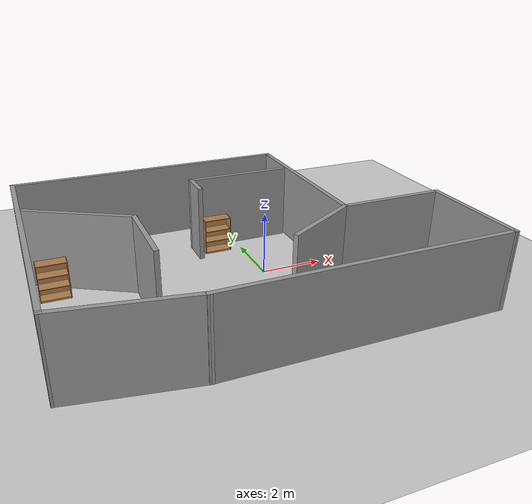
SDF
<sdf version="1.6">
 <world name="default">
  <light name="sun" type="directional">
   <pose>0 0 10 0 -0 0</pose>
   <diffuse>0.8 0.8 0.8 1</diffuse>
   <specular>0.2 0.2 0.2 1</specular>
   <attenuation>
    <range>1000</range>
    <constant>0.9</constant>
    <linear>0.01</linear>
    <quadratic>0.001</quadratic>
   </attenuation>
   <direction>-0.5 0.1 -0.9</direction>
  </light>
  <model name="ground_plane">
   <static>1</static>
   <link name="link">
    <collision name="collision">
     <geometry><plane><normal>0 0 1</normal><size>100 100</size></plane></geometry>
     <surface><friction><ode><mu>100</mu><mu2>50</mu2></ode></friction></surface>
    </collision>
    <visual name="visual">
     <cast_shadows>0</cast_shadows>
     <geometry><plane><normal>0 0 1</normal><size>100 100</size></plane></geometry>
     <material>
      <script><uri>file://media/materials/scripts/gazebo.material</uri><name>Gazebo/Grey</name></script>
     </material>
    </visual>
   </link>
  </model>
  <gravity>0 0 -9.8</gravity>
  <magnetic_field>6e-06 2.3e-05 -4.2e-05</magnetic_field>
  <atmosphere type="adiabatic"/>
  <physics name="default_physics" default="0" type="ode">
   <max_step_size>0.001</max_step_size>
   <real_time_factor>1</real_time_factor>
   <real_time_update_rate>1000</real_time_update_rate>
  </physics>
  <scene><ambient>0.4 0.4 0.4 1</ambient><background>0.7 0.7 0.7 1</background><shadows>1</shadows></scene>
  <audio><device>default</device></audio>
  <spherical_coordinates>
   <surface_model>EARTH_WGS84</surface_model>
   <latitude_deg>0</latitude_deg>
   <longitude_deg>0</longitude_deg>
   <elevation>0</elevation>
   <heading_deg>0</heading_deg>
  </spherical_coordinates>
  <model name="smart_test">
   <pose>-0.860655 -0.210655 0 0 -0 0</pose>
   <link name="Wall_0">
    <collision name="Wall_0_Collision">
     <geometry><box><size>9 0.15 2.5</size></box></geometry>
     <pose>0 0 1.25 0 -0 0</pose>
    </collision>
    <visual name="Wall_0_Visual">
     <pose>0 0 1.25 0 -0 0</pose>
     <geometry><box><size>9 0.15 2.5</size></box></geometry>
     <material>
      <script><uri>file://media/materials/scripts/gazebo.material</uri><name>Gazebo/Grey</name></script>
      <ambient>1 1 1 1</ambient>
     </material>
     <meta><layer>0</layer></meta>
    </visual>
    <pose>1.80566 -4.46934 0 0 -0 0</pose>
   </link>
   <link name="Wall_1">
    <collision name="Wall_1_Collision">
     <geometry><box><size>3.5 0.15 2.5</size></box></geometry>
     <pose>0 0 1.25 0 -0 0</pose>
    </collision>
    <visual name="Wall_1_Visual">
     <pose>0 0 1.25 0 -0 0</pose>
     <geometry><box><size>3.5 0.15 2.5</size></box></geometry>
     <material>
      <script><uri>file://media/materials/scripts/gazebo.material</uri><name>Gazebo/Grey</name></script>
      <ambient>1 1 1 1</ambient>
     </material>
     <meta><layer>0</layer></meta>
    </visual>
    <pose>6.23065 -2.79434 0 0 -0 1.5708</pose>
   </link>
   <link name="Wall_11">
    <collision name="Wall_11_Collision">
     <geometry><box><size>3.5 0.15 2.5</size></box></geometry>
     <pose>0 0 1.25 0 -0 0</pose>
    </collision>
    <visual name="Wall_11_Visual">
     <pose>0 0 1.25 0 -0 0</pose>
     <geometry><box><size>3.5 0.15 2.5</size></box></geometry>
     <material>
      <script><uri>file://media/materials/scripts/gazebo.material</uri><name>Gazebo/Grey</name></script>
      <ambient>1 1 1 1</ambient>
     </material>
     <meta><layer>0</layer></meta>
    </visual>
    <pose>-4.59611 1.31726 0 0 -0 -0.523599</pose>
   </link>
   <link name="Wall_12">
    <collision name="Wall_12_Collision">
     <geometry><box><size>2.5 0.15 2.5</size></box></geometry>
     <pose>0 0 1.25 0 -0 0</pose>
    </collision>
    <visual name="Wall_12_Visual">
     <pose>0 0 1.25 0 -0 0</pose>
     <geometry><box><size>2.5 0.15 2.5</size></box></geometry>
     <material>
      <script><uri>file://media/materials/scripts/gazebo.material</uri><name>Gazebo/Grey</name></script>
      <ambient>1 1 1 1</ambient>
     </material>
     <meta><layer>0</layer></meta>
    </visual>
    <pose>-3.14552 -0.695239 0 0 -0 -1.5708</pose>
   </link>
   <link name="Wall_14">
    <collision name="Wall_14_Collision">
     <geometry><box><size>2.75 0.15 2.5</size></box></geometry>
     <pose>0 0 1.25 0 -0 0</pose>
    </collision>
    <visual name="Wall_14_Visual">
     <pose>0 0 1.25 0 -0 0</pose>
     <geometry><box><size>2.75 0.15 2.5</size></box></geometry>
     <material>
      <script><uri>file://media/materials/scripts/gazebo.material</uri><name>Gazebo/Grey</name></script>
      <ambient>1 1 1 1</ambient>
     </material>
     <meta><layer>0</layer></meta>
    </visual>
    <pose>1.75482 -1.76934 0 0 -0 -2.61799</pose>
   </link>
   <link name="Wall_2">
    <collision name="Wall_2_Collision">
     <geometry><box><size>3.5 0.15 2.5</size></box></geometry>
     <pose>0 0 1.25 0 -0 0</pose>
    </collision>
    <visual name="Wall_2_Visual">
     <pose>0 0 1.25 0 -0 0</pose>
     <geometry><box><size>3.5 0.15 2.5</size></box></geometry>
     <material>
      <script><uri>file://media/materials/scripts/gazebo.material</uri><name>Gazebo/Grey</name></script>
      <ambient>1 1 1 1</ambient>
     </material>
     <meta><layer>0</layer></meta>
    </visual>
    <pose>4.55565 -1.11935 0 0 -0 3.14159</pose>
   </link>
   <link name="Wall_3">
    <collision name="Wall_3_Collision">
     <geometry><box><size>5.75 0.15 2.5</size></box></geometry>
     <pose>0 0 1.25 0 -0 0</pose>
    </collision>
    <visual name="Wall_3_Visual">
     <pose>0 0 1.25 0 -0 0</pose>
     <geometry><box><size>5.75 0.15 2.5</size></box></geometry>
     <material>
      <script><uri>file://media/materials/scripts/gazebo.material</uri><name>Gazebo/Grey</name></script>
      <ambient>1 1 1 1</ambient>
     </material>
     <meta><layer>0</layer></meta>
    </visual>
    <pose>2.88065 1.68066 0 0 -0 1.5708</pose>
   </link>
   <link name="Wall_4">
    <collision name="Wall_4_Collision">
     <geometry><box><size>9.25 0.15 2.5</size></box></geometry>
     <pose>0 0 1.25 0 -0 0</pose>
    </collision>
    <visual name="Wall_4_Visual">
     <pose>0 0 1.25 0 -0 0</pose>
     <geometry><box><size>9.25 0.15 2.5</size></box></geometry>
     <material>
      <script><uri>file://media/materials/scripts/gazebo.material</uri><name>Gazebo/Grey</name></script>
      <ambient>1 1 1 1</ambient>
     </material>
     <meta><layer>0</layer></meta>
    </visual>
    <pose>-1.66935 4.48065 0 0 -0 3.14159</pose>
   </link>
   <link name="Wall_5">
    <collision name="Wall_5_Collision">
     <geometry><box><size>8.5 0.15 2.5</size></box></geometry>
     <pose>0 0 1.25 0 -0 0</pose>
    </collision>
    <visual name="Wall_5_Visual">
     <pose>0 0 1.25 0 -0 0</pose>
     <geometry><box><size>8.5 0.15 2.5</size></box></geometry>
     <material>
      <script><uri>file://media/materials/scripts/gazebo.material</uri><name>Gazebo/Grey</name></script>
      <ambient>1 1 1 1</ambient>
     </material>
     <meta><layer>0</layer></meta>
    </visual>
    <pose>-6.21934 0.305655 0 0 -0 -1.5708</pose>
   </link>
   <link name="Wall_6">
    <collision name="Wall_6_Collision">
     <geometry><box><size>3.79966 0.15 2.5</size></box></geometry>
     <pose>0 0 1.25 0 -0 0</pose>
    </collision>
    <visual name="Wall_6_Visual">
     <pose>0 0 1.25 0 -0 0</pose>
     <geometry><box><size>3.79966 0.15 2.5</size></box></geometry>
     <material>
      <script><uri>file://media/materials/scripts/gazebo.material</uri><name>Gazebo/Grey</name></script>
      <ambient>1 1 1 1</ambient>
     </material>
     <meta><layer>0</layer></meta>
    </visual>
    <pose>-4.41934 -4.16934 0 0 -0 -0.165149</pose>
   </link>
   <link name="Wall_8">
    <collision name="Wall_8_Collision">
     <geometry><box><size>3.5 0.15 2.5</size></box></geometry>
     <pose>0 0 1.25 0 -0 0</pose>
    </collision>
    <visual name="Wall_8_Visual">
     <pose>0 0 1.25 0 -0 0</pose>
     <geometry><box><size>3.5 0.15 2.5</size></box></geometry>
     <material>
      <script><uri>file://media/materials/scripts/gazebo.material</uri><name>Gazebo/Grey</name></script>
      <ambient>1 1 1 1</ambient>
     </material>
     <meta><layer>0</layer></meta>
    </visual>
    <pose>1.00263 2.78798 0 0 -0 3.14159</pose>
   </link>
   <link name="Wall_9">
    <collision name="Wall_9_Collision">
     <geometry><box><size>1 0.15 2.5</size></box></geometry>
     <pose>0 0 1.25 0 -0 0</pose>
    </collision>
    <visual name="Wall_9_Visual">
     <pose>0 0 1.25 0 -0 0</pose>
     <geometry><box><size>1 0.15 2.5</size></box></geometry>
     <material>
      <script><uri>file://media/materials/scripts/gazebo.material</uri><name>Gazebo/Grey</name></script>
      <ambient>1 1 1 1</ambient>
     </material>
     <meta><layer>0</layer></meta>
    </visual>
    <pose>-0.672367 2.36298 0 0 -0 -1.5708</pose>
   </link>
   <static>1</static>
  </model>
  <model name="bookshelf">
   <static>1</static>
   <link name="link">
    <inertial><mass>1</mass></inertial>
    <collision name="back">
     <pose>0 0.005 0.6 0 -0 0</pose>
     <geometry><box><size>0.9 0.01 1.2</size></box></geometry>
    </collision>
    <visual name="visual1">
     <pose>0 0.005 0.6 0 -0 0</pose>
     <geometry><box><size>0.9 0.01 1.2</size></box></geometry>
     <material>
      <script><uri>file://media/materials/scripts/gazebo.material</uri><name>Gazebo/Wood</name></script>
     </material>
    </visual>
    <collision name="left_side">
     <pose>0.45 -0.195 0.6 0 -0 0</pose>
     <geometry><box><size>0.02 0.4 1.2</size></box></geometry>
    </collision>
    <visual name="visual2">
     <pose>0.45 -0.195 0.6 0 -0 0</pose>
     <geometry><box><size>0.02 0.4 1.2</size></box></geometry>
     <material>
      <script><uri>file://media/materials/scripts/gazebo.material</uri><name>Gazebo/Wood</name></script>
     </material>
    </visual>
    <collision name="right_side">
     <pose>-0.45 -0.195 0.6 0 -0 0</pose>
     <geometry><box><size>0.02 0.4 1.2</size></box></geometry>
    </collision>
    <visual name="visual3">
     <pose>-0.45 -0.195 0.6 0 -0 0</pose>
     <geometry><box><size>0.02 0.4 1.2</size></box></geometry>
     <material>
      <script><uri>file://media/materials/scripts/gazebo.material</uri><name>Gazebo/Wood</name></script>
     </material>
    </visual>
    <collision name="bottom">
     <pose>0 -0.195 0.03 0 -0 0</pose>
     <geometry><box><size>0.88 0.4 0.06</size></box></geometry>
    </collision>
    <visual name="visual4">
     <pose>0 -0.195 0.03 0 -0 0</pose>
     <geometry><box><size>0.88 0.4 0.06</size></box></geometry>
     <material>
      <script><uri>file://media/materials/scripts/gazebo.material</uri><name>Gazebo/Wood</name></script>
     </material>
    </visual>
    <collision name="top">
     <pose>0 -0.195 1.19 0 -0 0</pose>
     <geometry><box><size>0.88 0.4 0.02</size></box></geometry>
    </collision>
    <visual name="visual5">
     <pose>0 -0.195 1.19 0 -0 0</pose>
     <geometry><box><size>0.88 0.4 0.02</size></box></geometry>
     <material>
      <script><uri>file://media/materials/scripts/gazebo.material</uri><name>Gazebo/Wood</name></script>
     </material>
    </visual>
    <collision name="low_shelf">
     <pose>0 -0.195 0.43 0 -0 0</pose>
     <geometry><box><size>0.88 0.4 0.02</size></box></geometry>
    </collision>
    <visual name="visual6">
     <pose>0 -0.195 0.43 0 -0 0</pose>
     <geometry><box><size>0.88 0.4 0.02</size></box></geometry>
     <material>
      <script><uri>file://media/materials/scripts/gazebo.material</uri><name>Gazebo/Wood</name></script>
     </material>
    </visual>
    <collision name="high_shelf">
     <pose>0 -0.195 0.8 0 -0 0</pose>
     <geometry><box><size>0.88 0.4 0.02</size></box></geometry>
    </collision>
    <visual name="visual7">
     <pose>0 -0.195 0.8 0 -0 0</pose>
     <geometry><box><size>0.88 0.4 0.02</size></box></geometry>
     <material>
      <script><uri>file://media/materials/scripts/gazebo.material</uri><name>Gazebo/Wood</name></script>
     </material>
    </visual>
   </link>
   <pose>-6.37291 4.04032 0 0 -0 0</pose>
  </model>
  <model name="bookshelf_0">
   <static>1</static>
   <link name="link">
    <inertial><mass>1</mass></inertial>
    <collision name="back">
     <pose>0 0.005 0.6 0 -0 0</pose>
     <geometry><box><size>0.9 0.01 1.2</size></box></geometry>
    </collision>
    <visual name="visual1">
     <pose>0 0.005 0.6 0 -0 0</pose>
     <geometry><box><size>0.9 0.01 1.2</size></box></geometry>
     <material>
      <script><uri>file://media/materials/scripts/gazebo.material</uri><name>Gazebo/Wood</name></script>
     </material>
    </visual>
    <collision name="left_side">
     <pose>0.45 -0.195 0.6 0 -0 0</pose>
     <geometry><box><size>0.02 0.4 1.2</size></box></geometry>
    </collision>
    <visual name="visual2">
     <pose>0.45 -0.195 0.6 0 -0 0</pose>
     <geometry><box><size>0.02 0.4 1.2</size></box></geometry>
     <material>
      <script><uri>file://media/materials/scripts/gazebo.material</uri><name>Gazebo/Wood</name></script>
     </material>
    </visual>
    <collision name="right_side">
     <pose>-0.45 -0.195 0.6 0 -0 0</pose>
     <geometry><box><size>0.02 0.4 1.2</size></box></geometry>
    </collision>
    <visual name="visual3">
     <pose>-0.45 -0.195 0.6 0 -0 0</pose>
     <geometry><box><size>0.02 0.4 1.2</size></box></geometry>
     <material>
      <script><uri>file://media/materials/scripts/gazebo.material</uri><name>Gazebo/Wood</name></script>
     </material>
    </visual>
    <collision name="bottom">
     <pose>0 -0.195 0.03 0 -0 0</pose>
     <geometry><box><size>0.88 0.4 0.06</size></box></geometry>
    </collision>
    <visual name="visual4">
     <pose>0 -0.195 0.03 0 -0 0</pose>
     <geometry><box><size>0.88 0.4 0.06</size></box></geometry>
     <material>
      <script><uri>file://media/materials/scripts/gazebo.material</uri><name>Gazebo/Wood</name></script>
     </material>
    </visual>
    <collision name="top">
     <pose>0 -0.195 1.19 0 -0 0</pose>
     <geometry><box><size>0.88 0.4 0.02</size></box></geometry>
    </collision>
    <visual name="visual5">
     <pose>0 -0.195 1.19 0 -0 0</pose>
     <geometry><box><size>0.88 0.4 0.02</size></box></geometry>
     <material>
      <script><uri>file://media/materials/scripts/gazebo.material</uri><name>Gazebo/Wood</name></script>
     </material>
    </visual>
    <collision name="low_shelf">
     <pose>0 -0.195 0.43 0 -0 0</pose>
     <geometry><box><size>0.88 0.4 0.02</size></box></geometry>
    </collision>
    <visual name="visual6">
     <pose>0 -0.195 0.43 0 -0 0</pose>
     <geometry><box><size>0.88 0.4 0.02</size></box></geometry>
     <material>
      <script><uri>file://media/materials/scripts/gazebo.material</uri><name>Gazebo/Wood</name></script>
     </material>
    </visual>
    <collision name="high_shelf">
     <pose>0 -0.195 0.8 0 -0 0</pose>
     <geometry><box><size>0.88 0.4 0.02</size></box></geometry>
    </collision>
    <visual name="visual7">
     <pose>0 -0.195 0.8 0 -0 0</pose>
     <geometry><box><size>0.88 0.4 0.02</size></box></geometry>
     <material>
      <script><uri>file://media/materials/scripts/gazebo.material</uri><name>Gazebo/Wood</name></script>
     </material>
    </visual>
   </link>
   <pose>-0.842377 2.33087 0 0 -0 0</pose>
  </model>
  <model name="bookshelf_1">
   <static>1</static>
   <link name="link">
    <inertial><mass>1</mass></inertial>
    <collision name="back">
     <pose>0 0.005 0.6 0 -0 0</pose>
     <geometry><box><size>0.9 0.01 1.2</size></box></geometry>
    </collision>
    <visual name="visual1">
     <pose>0 0.005 0.6 0 -0 0</pose>
     <geometry><box><size>0.9 0.01 1.2</size></box></geometry>
     <material>
      <script><uri>file://media/materials/scripts/gazebo.material</uri><name>Gazebo/Wood</name></script>
     </material>
    </visual>
    <collision name="left_side">
     <pose>0.45 -0.195 0.6 0 -0 0</pose>
     <geometry><box><size>0.02 0.4 1.2</size></box></geometry>
    </collision>
    <visual name="visual2">
     <pose>0.45 -0.195 0.6 0 -0 0</pose>
     <geometry><box><size>0.02 0.4 1.2</size></box></geometry>
     <material>
      <script><uri>file://media/materials/scripts/gazebo.material</uri><name>Gazebo/Wood</name></script>
     </material>
    </visual>
    <collision name="right_side">
     <pose>-0.45 -0.195 0.6 0 -0 0</pose>
     <geometry><box><size>0.02 0.4 1.2</size></box></geometry>
    </collision>
    <visual name="visual3">
     <pose>-0.45 -0.195 0.6 0 -0 0</pose>
     <geometry><box><size>0.02 0.4 1.2</size></box></geometry>
     <material>
      <script><uri>file://media/materials/scripts/gazebo.material</uri><name>Gazebo/Wood</name></script>
     </material>
    </visual>
    <collision name="bottom">
     <pose>0 -0.195 0.03 0 -0 0</pose>
     <geometry><box><size>0.88 0.4 0.06</size></box></geometry>
    </collision>
    <visual name="visual4">
     <pose>0 -0.195 0.03 0 -0 0</pose>
     <geometry><box><size>0.88 0.4 0.06</size></box></geometry>
     <material>
      <script><uri>file://media/materials/scripts/gazebo.material</uri><name>Gazebo/Wood</name></script>
     </material>
    </visual>
    <collision name="top">
     <pose>0 -0.195 1.19 0 -0 0</pose>
     <geometry><box><size>0.88 0.4 0.02</size></box></geometry>
    </collision>
    <visual name="visual5">
     <pose>0 -0.195 1.19 0 -0 0</pose>
     <geometry><box><size>0.88 0.4 0.02</size></box></geometry>
     <material>
      <script><uri>file://media/materials/scripts/gazebo.material</uri><name>Gazebo/Wood</name></script>
     </material>
    </visual>
    <collision name="low_shelf">
     <pose>0 -0.195 0.43 0 -0 0</pose>
     <geometry><box><size>0.88 0.4 0.02</size></box></geometry>
    </collision>
    <visual name="visual6">
     <pose>0 -0.195 0.43 0 -0 0</pose>
     <geometry><box><size>0.88 0.4 0.02</size></box></geometry>
     <material>
      <script><uri>file://media/materials/scripts/gazebo.material</uri><name>Gazebo/Wood</name></script>
     </material>
    </visual>
    <collision name="high_shelf">
     <pose>0 -0.195 0.8 0 -0 0</pose>
     <geometry><box><size>0.88 0.4 0.02</size></box></geometry>
    </collision>
    <visual name="visual7">
     <pose>0 -0.195 0.8 0 -0 0</pose>
     <geometry><box><size>0.88 0.4 0.02</size></box></geometry>
     <material>
      <script><uri>file://media/materials/scripts/gazebo.material</uri><name>Gazebo/Wood</name></script>
     </material>
    </visual>
   </link>
   <pose>-6.44085 1.07101 0 0 -0 0</pose>
  </model>
 </world>
</sdf>
